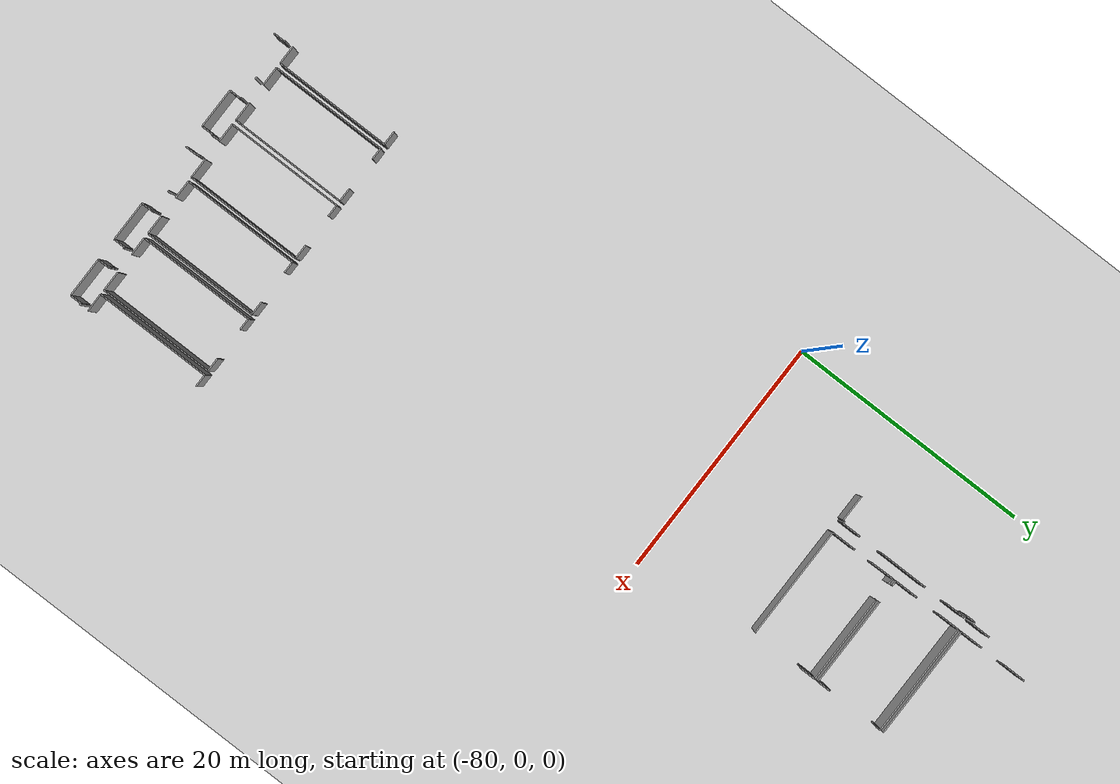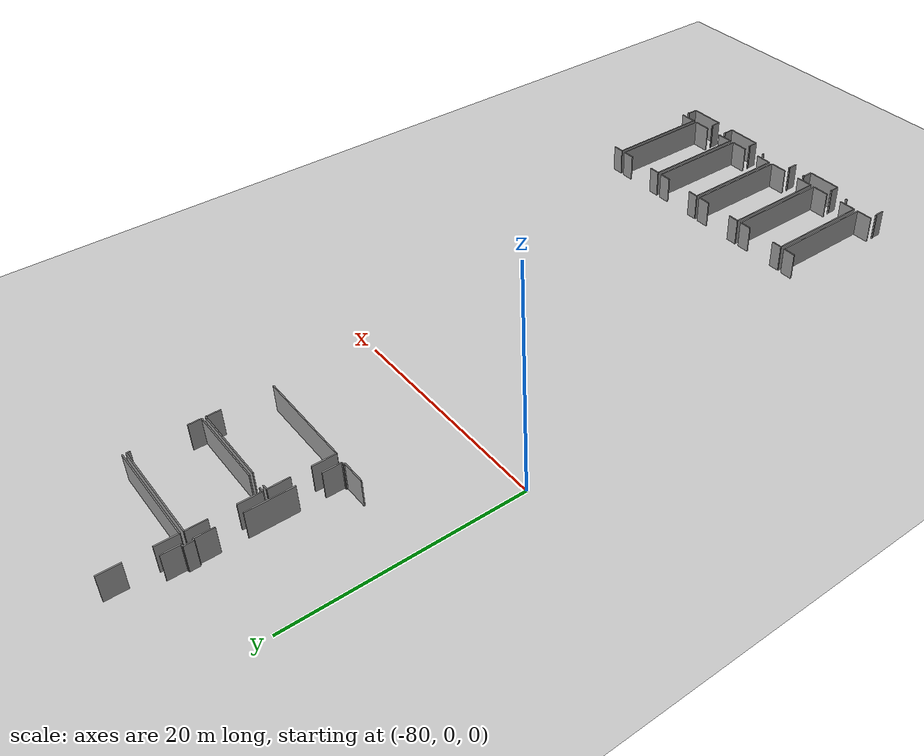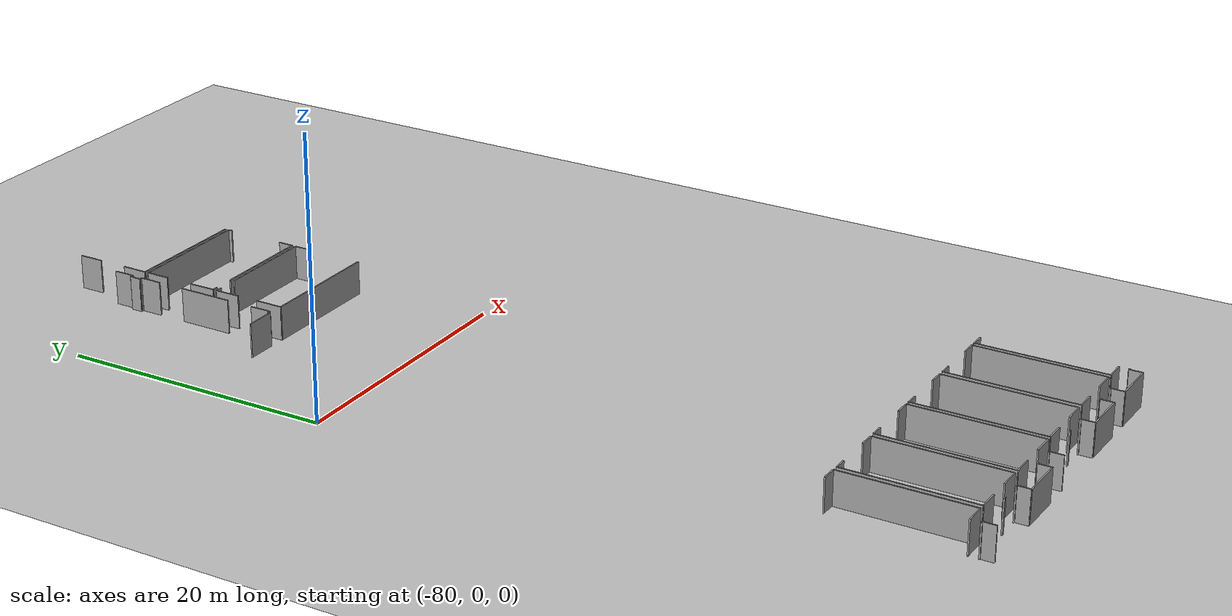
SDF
<sdf version="1.6">
 <world name="default">
  <model name="ground_plane">
   <static>1</static>
   <link name="link">
    <collision name="collision">
     <geometry><plane><normal>0 0 1</normal><size>100 100</size></plane></geometry>
     <surface><friction><ode><mu>100</mu><mu2>50</mu2></ode></friction></surface>
    </collision>
    <visual name="visual">
     <cast_shadows>0</cast_shadows>
     <geometry><plane><normal>0 0 1</normal><size>100 100</size></plane></geometry>
     <material>
      <script><uri>file://media/materials/scripts/gazebo.material</uri><name>Gazebo/Grey</name></script>
     </material>
    </visual>
   </link>
  </model>
  <model name="0510045926_A-40">
   <static>1</static>
   <link name="Wall_873">
    <collision name="Wall_873_Collision">
     <geometry><box><size>0.477208835979 0.1 2.5</size></box></geometry>
     <pose>0.238604417989 0 1.25 0 0 0</pose>
    </collision>
    <visual name="Wall_873_Visual">
     <pose>0.238604417989 0 1.25 0 0 0</pose>
     <geometry><box><size>0.477208835979 0.1 2.5</size></box></geometry>
     <material>
      <script><uri>file://media/materials/scripts/gazebo.material</uri><name>Gazebo/Grey</name></script>
      <ambient>1 1 1 1</ambient>
     </material>
    </visual>
    <pose>63.1870442878 -85.9717609133 0 0 0 0.0</pose>
   </link>
   <link name="Wall_874">
    <collision name="Wall_874_Collision">
     <geometry><box><size>7.28048076252 0.1 2.5</size></box></geometry>
     <pose>3.64024038126 0 1.25 0 0 0</pose>
    </collision>
    <visual name="Wall_874_Visual">
     <pose>3.64024038126 0 1.25 0 0 0</pose>
     <geometry><box><size>7.28048076252 0.1 2.5</size></box></geometry>
     <material>
      <script><uri>file://media/materials/scripts/gazebo.material</uri><name>Gazebo/Grey</name></script>
      <ambient>1 1 1 1</ambient>
     </material>
    </visual>
    <pose>65.1588305845 -85.9717609133 0 0 0 0.0</pose>
   </link>
   <link name="Wall_875">
    <collision name="Wall_875_Collision">
     <geometry><box><size>1.22018238008 0.1 2.5</size></box></geometry>
     <pose>0.61009119004 0 1.25 0 0 0</pose>
    </collision>
    <visual name="Wall_875_Visual">
     <pose>0.61009119004 0 1.25 0 0 0</pose>
     <geometry><box><size>1.22018238008 0.1 2.5</size></box></geometry>
     <material>
      <script><uri>file://media/materials/scripts/gazebo.material</uri><name>Gazebo/Grey</name></script>
      <ambient>1 1 1 1</ambient>
     </material>
    </visual>
    <pose>72.439311347 -85.9717609133 0 0 0 -1.57079632679</pose>
   </link>
   <link name="Wall_876">
    <collision name="Wall_876_Collision">
     <geometry><box><size>9.22612210708 0.1 2.5</size></box></geometry>
     <pose>4.61306105354 0 1.25 0 0 0</pose>
    </collision>
    <visual name="Wall_876_Visual">
     <pose>4.61306105354 0 1.25 0 0 0</pose>
     <geometry><box><size>9.22612210708 0.1 2.5</size></box></geometry>
     <material>
      <script><uri>file://media/materials/scripts/gazebo.material</uri><name>Gazebo/Grey</name></script>
      <ambient>1 1 1 1</ambient>
     </material>
    </visual>
    <pose>72.439311347 -91.4761617687 0 0 0 3.14159265359</pose>
   </link>
   <link name="Wall_877">
    <collision name="Wall_877_Collision">
     <geometry><box><size>2.03778326342 0.1 2.5</size></box></geometry>
     <pose>1.01889163171 0 1.25 0 0 0</pose>
    </collision>
    <visual name="Wall_877_Visual">
     <pose>1.01889163171 0 1.25 0 0 0</pose>
     <geometry><box><size>2.03778326342 0.1 2.5</size></box></geometry>
     <material>
      <script><uri>file://media/materials/scripts/gazebo.material</uri><name>Gazebo/Grey</name></script>
      <ambient>1 1 1 1</ambient>
     </material>
    </visual>
    <pose>63.21318924 -91.4761617687 0 0 0 1.57079632679</pose>
   </link>
   <link name="Wall_878">
    <collision name="Wall_878_Collision">
     <geometry><box><size>1.84683096638 0.1 2.5</size></box></geometry>
     <pose>0.923415483188 0 1.25 0 0 0</pose>
    </collision>
    <visual name="Wall_878_Visual">
     <pose>0.923415483188 0 1.25 0 0 0</pose>
     <geometry><box><size>1.84683096638 0.1 2.5</size></box></geometry>
     <material>
      <script><uri>file://media/materials/scripts/gazebo.material</uri><name>Gazebo/Grey</name></script>
      <ambient>1 1 1 1</ambient>
     </material>
    </visual>
    <pose>63.21318924 -87.8184068078 0 0 0 1.58495345651</pose>
   </link>
   <link name="Wall_879">
    <collision name="Wall_879_Collision">
     <geometry><box><size>9.25962825939 0.1 2.5</size></box></geometry>
     <pose>4.6298141297 0 1.25 0 0 0</pose>
    </collision>
    <visual name="Wall_879_Visual">
     <pose>4.6298141297 0 1.25 0 0 0</pose>
     <geometry><box><size>9.25962825939 0.1 2.5</size></box></geometry>
     <material>
      <script><uri>file://media/materials/scripts/gazebo.material</uri><name>Gazebo/Grey</name></script>
      <ambient>1 1 1 1</ambient>
     </material>
    </visual>
    <pose>63.1847597774 -79.9195852344 0 0 0 0.0</pose>
   </link>
   <link name="Wall_880">
    <collision name="Wall_880_Collision">
     <geometry><box><size>0.305616722616 0.1 2.5</size></box></geometry>
     <pose>0.152808361308 0 1.25 0 0 0</pose>
    </collision>
    <visual name="Wall_880_Visual">
     <pose>0.152808361308 0 1.25 0 0 0</pose>
     <geometry><box><size>0.305616722616 0.1 2.5</size></box></geometry>
     <material>
      <script><uri>file://media/materials/scripts/gazebo.material</uri><name>Gazebo/Grey</name></script>
      <ambient>1 1 1 1</ambient>
     </material>
    </visual>
    <pose>72.4443880368 -79.9195852344 0 0 0 -1.57079632679</pose>
   </link>
   <link name="Wall_881">
    <collision name="Wall_881_Collision">
     <geometry><box><size>1.12372527493 0.1 2.5</size></box></geometry>
     <pose>0.561862637467 0 1.25 0 0 0</pose>
    </collision>
    <visual name="Wall_881_Visual">
     <pose>0.561862637467 0 1.25 0 0 0</pose>
     <geometry><box><size>1.12372527493 0.1 2.5</size></box></geometry>
     <material>
      <script><uri>file://media/materials/scripts/gazebo.material</uri><name>Gazebo/Grey</name></script>
      <ambient>1 1 1 1</ambient>
     </material>
    </visual>
    <pose>72.4443880368 -84.5513031228 0 0 0 -1.57079632679</pose>
   </link>
   <link name="Wall_882">
    <collision name="Wall_882_Collision">
     <geometry><box><size>7.33073999099 0.1 2.5</size></box></geometry>
     <pose>3.66536999549 0 1.25 0 0 0</pose>
    </collision>
    <visual name="Wall_882_Visual">
     <pose>3.66536999549 0 1.25 0 0 0</pose>
     <geometry><box><size>7.33073999099 0.1 2.5</size></box></geometry>
     <material>
      <script><uri>file://media/materials/scripts/gazebo.material</uri><name>Gazebo/Grey</name></script>
      <ambient>1 1 1 1</ambient>
     </material>
    </visual>
    <pose>72.4443880368 -85.6750283977 0 0 0 3.14159265359</pose>
   </link>
   <link name="Wall_883">
    <collision name="Wall_883_Collision">
     <geometry><box><size>0.441164338793 0.1 2.5</size></box></geometry>
     <pose>0.220582169396 0 1.25 0 0 0</pose>
    </collision>
    <visual name="Wall_883_Visual">
     <pose>0.220582169396 0 1.25 0 0 0</pose>
     <geometry><box><size>0.441164338793 0.1 2.5</size></box></geometry>
     <material>
      <script><uri>file://media/materials/scripts/gazebo.material</uri><name>Gazebo/Grey</name></script>
      <ambient>1 1 1 1</ambient>
     </material>
    </visual>
    <pose>63.6264317852 -85.6750283977 0 0 0 3.14159265359</pose>
   </link>
   <link name="Wall_884">
    <collision name="Wall_884_Collision">
     <geometry><box><size>1.95249487572 0.1 2.5</size></box></geometry>
     <pose>0.976247437858 0 1.25 0 0 0</pose>
    </collision>
    <visual name="Wall_884_Visual">
     <pose>0.976247437858 0 1.25 0 0 0</pose>
     <geometry><box><size>1.95249487572 0.1 2.5</size></box></geometry>
     <material>
      <script><uri>file://media/materials/scripts/gazebo.material</uri><name>Gazebo/Grey</name></script>
      <ambient>1 1 1 1</ambient>
     </material>
    </visual>
    <pose>63.1852674464 -85.6750283977 0 0 0 1.57079632679</pose>
   </link>
   <link name="Wall_885">
    <collision name="Wall_885_Collision">
     <geometry><box><size>1.70881384339 0.1 2.5</size></box></geometry>
     <pose>0.854406921697 0 1.25 0 0 0</pose>
    </collision>
    <visual name="Wall_885_Visual">
     <pose>0.854406921697 0 1.25 0 0 0</pose>
     <geometry><box><size>1.70881384339 0.1 2.5</size></box></geometry>
     <material>
      <script><uri>file://media/materials/scripts/gazebo.material</uri><name>Gazebo/Grey</name></script>
      <ambient>1 1 1 1</ambient>
     </material>
    </visual>
    <pose>63.1852674464 -81.6283990024 0 0 0 1.57109341532</pose>
   </link>
   <link name="Wall_886">
    <collision name="Wall_886_Collision">
     <geometry><box><size>1.87101400532 0.1 2.5</size></box></geometry>
     <pose>0.935507002659 0 1.25 0 0 0</pose>
    </collision>
    <visual name="Wall_886_Visual">
     <pose>0.935507002659 0 1.25 0 0 0</pose>
     <geometry><box><size>1.87101400532 0.1 2.5</size></box></geometry>
     <material>
      <script><uri>file://media/materials/scripts/gazebo.material</uri><name>Gazebo/Grey</name></script>
      <ambient>1 1 1 1</ambient>
     </material>
    </visual>
    <pose>63.1832367705 -79.6241218913 0 0 0 1.57079632679</pose>
   </link>
   <link name="Wall_887">
    <collision name="Wall_887_Collision">
     <geometry><box><size>1.81034756287 0.1 2.5</size></box></geometry>
     <pose>0.905173781436 0 1.25 0 0 0</pose>
    </collision>
    <visual name="Wall_887_Visual">
     <pose>0.905173781436 0 1.25 0 0 0</pose>
     <geometry><box><size>1.81034756287 0.1 2.5</size></box></geometry>
     <material>
      <script><uri>file://media/materials/scripts/gazebo.material</uri><name>Gazebo/Grey</name></script>
      <ambient>1 1 1 1</ambient>
     </material>
    </visual>
    <pose>63.1832367705 -75.6470431455 0 0 0 1.57079632679</pose>
   </link>
   <link name="Wall_890">
    <collision name="Wall_890_Collision">
     <geometry><box><size>9.28679232728 0.1 2.5</size></box></geometry>
     <pose>4.64339616364 0 1.25 0 0 0</pose>
    </collision>
    <visual name="Wall_890_Visual">
     <pose>4.64339616364 0 1.25 0 0 0</pose>
     <geometry><box><size>9.28679232728 0.1 2.5</size></box></geometry>
     <material>
      <script><uri>file://media/materials/scripts/gazebo.material</uri><name>Gazebo/Grey</name></script>
      <ambient>1 1 1 1</ambient>
     </material>
    </visual>
    <pose>72.47002532 -79.6324984294 0 0 0 3.14069066947</pose>
   </link>
   <link name="Wall_924">
    <collision name="Wall_924_Collision">
     <geometry><box><size>1.51209204039 0.1 2.5</size></box></geometry>
     <pose>0.756046020193 0 1.25 0 0 0</pose>
    </collision>
    <visual name="Wall_924_Visual">
     <pose>0.756046020193 0 1.25 0 0 0</pose>
     <geometry><box><size>1.51209204039 0.1 2.5</size></box></geometry>
     <material>
      <script><uri>file://media/materials/scripts/gazebo.material</uri><name>Gazebo/Grey</name></script>
      <ambient>1 1 1 1</ambient>
     </material>
    </visual>
    <pose>62.2387186435 -77.7853448659 0 0 0 -1.57079632679</pose>
   </link>
   <link name="Wall_925">
    <collision name="Wall_925_Collision">
     <geometry><box><size>0.220582169396 0.1 2.5</size></box></geometry>
     <pose>0.110291084698 0 1.25 0 0 0</pose>
    </collision>
    <visual name="Wall_925_Visual">
     <pose>0.110291084698 0 1.25 0 0 0</pose>
     <geometry><box><size>0.220582169396 0.1 2.5</size></box></geometry>
     <material>
      <script><uri>file://media/materials/scripts/gazebo.material</uri><name>Gazebo/Grey</name></script>
      <ambient>1 1 1 1</ambient>
     </material>
    </visual>
    <pose>62.2387186435 -79.2974369063 0 0 0 3.14159265359</pose>
   </link>
   <link name="Wall_926">
    <collision name="Wall_926_Collision">
     <geometry><box><size>0.801609310649 0.1 2.5</size></box></geometry>
     <pose>0.400804655324 0 1.25 0 0 0</pose>
    </collision>
    <visual name="Wall_926_Visual">
     <pose>0.400804655324 0 1.25 0 0 0</pose>
     <geometry><box><size>0.801609310649 0.1 2.5</size></box></geometry>
     <material>
      <script><uri>file://media/materials/scripts/gazebo.material</uri><name>Gazebo/Grey</name></script>
      <ambient>1 1 1 1</ambient>
     </material>
    </visual>
    <pose>62.0181364741 -79.2974369063 0 0 0 -1.57079632679</pose>
   </link>
   <link name="Wall_927">
    <collision name="Wall_927_Collision">
     <geometry><box><size>0.207636610548 0.1 2.5</size></box></geometry>
     <pose>0.103818305274 0 1.25 0 0 0</pose>
    </collision>
    <visual name="Wall_927_Visual">
     <pose>0.103818305274 0 1.25 0 0 0</pose>
     <geometry><box><size>0.207636610548 0.1 2.5</size></box></geometry>
     <material>
      <script><uri>file://media/materials/scripts/gazebo.material</uri><name>Gazebo/Grey</name></script>
      <ambient>1 1 1 1</ambient>
     </material>
    </visual>
    <pose>62.0181364741 -80.0990462169 0 0 0 0.0</pose>
   </link>
   <link name="Wall_928">
    <collision name="Wall_928_Collision">
     <geometry><box><size>1.61007215245 0.1 2.5</size></box></geometry>
     <pose>0.805036076227 0 1.25 0 0 0</pose>
    </collision>
    <visual name="Wall_928_Visual">
     <pose>0.805036076227 0 1.25 0 0 0</pose>
     <geometry><box><size>1.61007215245 0.1 2.5</size></box></geometry>
     <material>
      <script><uri>file://media/materials/scripts/gazebo.material</uri><name>Gazebo/Grey</name></script>
      <ambient>1 1 1 1</ambient>
     </material>
    </visual>
    <pose>62.2257730847 -80.0990462169 0 0 0 -1.57079632679</pose>
   </link>
   <link name="Wall_929">
    <collision name="Wall_929_Collision">
     <geometry><box><size>3.96768686978 0.1 2.5</size></box></geometry>
     <pose>1.98384343489 0 1.25 0 0 0</pose>
    </collision>
    <visual name="Wall_929_Visual">
     <pose>1.98384343489 0 1.25 0 0 0</pose>
     <geometry><box><size>3.96768686978 0.1 2.5</size></box></geometry>
     <material>
      <script><uri>file://media/materials/scripts/gazebo.material</uri><name>Gazebo/Grey</name></script>
      <ambient>1 1 1 1</ambient>
     </material>
    </visual>
    <pose>62.2257730847 -83.7212643496 0 0 0 -1.57079632679</pose>
   </link>
   <link name="Wall_930">
    <collision name="Wall_930_Collision">
     <geometry><box><size>1.58875005553 0.1 2.5</size></box></geometry>
     <pose>0.794375027763 0 1.25 0 0 0</pose>
    </collision>
    <visual name="Wall_930_Visual">
     <pose>0.794375027763 0 1.25 0 0 0</pose>
     <geometry><box><size>1.58875005553 0.1 2.5</size></box></geometry>
     <material>
      <script><uri>file://media/materials/scripts/gazebo.material</uri><name>Gazebo/Grey</name></script>
      <ambient>1 1 1 1</ambient>
     </material>
    </visual>
    <pose>62.2257730847 -89.7064277238 0 0 0 -1.57079632679</pose>
   </link>
   <link name="Wall_931">
    <collision name="Wall_931_Collision">
     <geometry><box><size>0.189360527468 0.1 2.5</size></box></geometry>
     <pose>0.094680263734 0 1.25 0 0 0</pose>
    </collision>
    <visual name="Wall_931_Visual">
     <pose>0.094680263734 0 1.25 0 0 0</pose>
     <geometry><box><size>0.189360527468 0.1 2.5</size></box></geometry>
     <material>
      <script><uri>file://media/materials/scripts/gazebo.material</uri><name>Gazebo/Grey</name></script>
      <ambient>1 1 1 1</ambient>
     </material>
    </visual>
    <pose>62.2257730847 -91.2951777793 0 0 0 3.14159265359</pose>
   </link>
   <link name="Wall_932">
    <collision name="Wall_932_Collision">
     <geometry><box><size>0.136309119639 0.1 2.5</size></box></geometry>
     <pose>0.0681545598193 0 1.25 0 0 0</pose>
    </collision>
    <visual name="Wall_932_Visual">
     <pose>0.0681545598193 0 1.25 0 0 0</pose>
     <geometry><box><size>0.136309119639 0.1 2.5</size></box></geometry>
     <material>
      <script><uri>file://media/materials/scripts/gazebo.material</uri><name>Gazebo/Grey</name></script>
      <ambient>1 1 1 1</ambient>
     </material>
    </visual>
    <pose>62.0364125572 -91.2951777793 0 0 0 -1.57079632679</pose>
   </link>
   <link name="Wall_933">
    <collision name="Wall_933_Collision">
     <geometry><box><size>2.18957628678 0.1 2.5</size></box></geometry>
     <pose>1.09478814339 0 1.25 0 0 0</pose>
    </collision>
    <visual name="Wall_933_Visual">
     <pose>1.09478814339 0 1.25 0 0 0</pose>
     <geometry><box><size>2.18957628678 0.1 2.5</size></box></geometry>
     <material>
      <script><uri>file://media/materials/scripts/gazebo.material</uri><name>Gazebo/Grey</name></script>
      <ambient>1 1 1 1</ambient>
     </material>
    </visual>
    <pose>62.0364125572 -91.431486899 0 0 0 3.14159265359</pose>
   </link>
   <link name="Wall_1290">
    <collision name="Wall_1290_Collision">
     <geometry><box><size>1.16789247571 0.1 2.5</size></box></geometry>
     <pose>0.583946237856 0 1.25 0 0 0</pose>
    </collision>
    <visual name="Wall_1290_Visual">
     <pose>0.583946237856 0 1.25 0 0 0</pose>
     <geometry><box><size>1.16789247571 0.1 2.5</size></box></geometry>
     <material>
      <script><uri>file://media/materials/scripts/gazebo.material</uri><name>Gazebo/Grey</name></script>
      <ambient>1 1 1 1</ambient>
     </material>
    </visual>
    <pose>59.7671322414 -134.656707894 0 0 0 0.0</pose>
   </link>
   <link name="Wall_1291">
    <collision name="Wall_1291_Collision">
     <geometry><box><size>9.6269267624 0.1 2.5</size></box></geometry>
     <pose>4.8134633812 0 1.25 0 0 0</pose>
    </collision>
    <visual name="Wall_1291_Visual">
     <pose>4.8134633812 0 1.25 0 0 0</pose>
     <geometry><box><size>9.6269267624 0.1 2.5</size></box></geometry>
     <material>
      <script><uri>file://media/materials/scripts/gazebo.material</uri><name>Gazebo/Grey</name></script>
      <ambient>1 1 1 1</ambient>
     </material>
    </visual>
    <pose>60.9350247171 -134.656707894 0 0 0 -1.57079632679</pose>
   </link>
   <link name="Wall_1292">
    <collision name="Wall_1292_Collision">
     <geometry><box><size>1.55194405488 0.1 2.5</size></box></geometry>
     <pose>0.77597202744 0 1.25 0 0 0</pose>
    </collision>
    <visual name="Wall_1292_Visual">
     <pose>0.77597202744 0 1.25 0 0 0</pose>
     <geometry><box><size>1.55194405488 0.1 2.5</size></box></geometry>
     <material>
      <script><uri>file://media/materials/scripts/gazebo.material</uri><name>Gazebo/Grey</name></script>
      <ambient>1 1 1 1</ambient>
     </material>
    </visual>
    <pose>60.9350247171 -144.283634656 0 0 0 3.14159265359</pose>
   </link>
   <link name="Wall_1354">
    <collision name="Wall_1354_Collision">
     <geometry><box><size>9.60687383791 0.1 2.5</size></box></geometry>
     <pose>4.80343691896 0 1.25 0 0 0</pose>
    </collision>
    <visual name="Wall_1354_Visual">
     <pose>4.80343691896 0 1.25 0 0 0</pose>
     <geometry><box><size>9.60687383791 0.1 2.5</size></box></geometry>
     <material>
      <script><uri>file://media/materials/scripts/gazebo.material</uri><name>Gazebo/Grey</name></script>
      <ambient>1 1 1 1</ambient>
     </material>
    </visual>
    <pose>61.3396368898 -144.290234353 0 0 0 1.57079632679</pose>
   </link>
   <link name="Wall_1355">
    <collision name="Wall_1355_Collision">
     <geometry><box><size>0.977262775807 0.1 2.5</size></box></geometry>
     <pose>0.488631387904 0 1.25 0 0 0</pose>
    </collision>
    <visual name="Wall_1355_Visual">
     <pose>0.488631387904 0 1.25 0 0 0</pose>
     <geometry><box><size>0.977262775807 0.1 2.5</size></box></geometry>
     <material>
      <script><uri>file://media/materials/scripts/gazebo.material</uri><name>Gazebo/Grey</name></script>
      <ambient>1 1 1 1</ambient>
     </material>
    </visual>
    <pose>61.3396368898 -134.683360515 0 0 0 0.0</pose>
   </link>
   <link name="Wall_1356">
    <collision name="Wall_1356_Collision">
     <geometry><box><size>1.14301669596 0.1 2.5</size></box></geometry>
     <pose>0.571508347982 0 1.25 0 0 0</pose>
    </collision>
    <visual name="Wall_1356_Visual">
     <pose>0.571508347982 0 1.25 0 0 0</pose>
     <geometry><box><size>1.14301669596 0.1 2.5</size></box></geometry>
     <material>
      <script><uri>file://media/materials/scripts/gazebo.material</uri><name>Gazebo/Grey</name></script>
      <ambient>1 1 1 1</ambient>
     </material>
    </visual>
    <pose>65.0438435618 -134.683360515 0 0 0 0.0</pose>
   </link>
   <link name="Wall_1357">
    <collision name="Wall_1357_Collision">
     <geometry><box><size>9.60179714817 0.1 2.5</size></box></geometry>
     <pose>4.80089857408 0 1.25 0 0 0</pose>
    </collision>
    <visual name="Wall_1357_Visual">
     <pose>4.80089857408 0 1.25 0 0 0</pose>
     <geometry><box><size>9.60179714817 0.1 2.5</size></box></geometry>
     <material>
      <script><uri>file://media/materials/scripts/gazebo.material</uri><name>Gazebo/Grey</name></script>
      <ambient>1 1 1 1</ambient>
     </material>
    </visual>
    <pose>66.1868602578 -134.683360515 0 0 0 -1.57079632679</pose>
   </link>
   <link name="Wall_1358">
    <collision name="Wall_1358_Collision">
     <geometry><box><size>1.62225620784 0.1 2.5</size></box></geometry>
     <pose>0.81112810392 0 1.25 0 0 0</pose>
    </collision>
    <visual name="Wall_1358_Visual">
     <pose>0.81112810392 0 1.25 0 0 0</pose>
     <geometry><box><size>1.62225620784 0.1 2.5</size></box></geometry>
     <material>
      <script><uri>file://media/materials/scripts/gazebo.material</uri><name>Gazebo/Grey</name></script>
      <ambient>1 1 1 1</ambient>
     </material>
    </visual>
    <pose>66.1868602578 -144.285157663 0 0 0 3.14159265359</pose>
   </link>
   <link name="Wall_1359">
    <collision name="Wall_1359_Collision">
     <geometry><box><size>1.58748900058 0.1 2.5</size></box></geometry>
     <pose>0.793744500289 0 1.25 0 0 0</pose>
    </collision>
    <visual name="Wall_1359_Visual">
     <pose>0.793744500289 0 1.25 0 0 0</pose>
     <geometry><box><size>1.58748900058 0.1 2.5</size></box></geometry>
     <material>
      <script><uri>file://media/materials/scripts/gazebo.material</uri><name>Gazebo/Grey</name></script>
      <ambient>1 1 1 1</ambient>
     </material>
    </visual>
    <pose>62.9271177729 -144.285157663 0 0 0 -3.13839471118</pose>
   </link>
   <link name="Wall_1360">
    <collision name="Wall_1360_Collision">
     <geometry><box><size>9.62794210035 0.1 2.5</size></box></geometry>
     <pose>4.81397105018 0 1.25 0 0 0</pose>
    </collision>
    <visual name="Wall_1360_Visual">
     <pose>4.81397105018 0 1.25 0 0 0</pose>
     <geometry><box><size>9.62794210035 0.1 2.5</size></box></geometry>
     <material>
      <script><uri>file://media/materials/scripts/gazebo.material</uri><name>Gazebo/Grey</name></script>
      <ambient>1 1 1 1</ambient>
     </material>
    </visual>
    <pose>66.5726886783 -144.299626229 0 0 0 1.57079632679</pose>
   </link>
   <link name="Wall_1361">
    <collision name="Wall_1361_Collision">
     <geometry><box><size>1.00264622453 0.1 2.5</size></box></geometry>
     <pose>0.501323112265 0 1.25 0 0 0</pose>
    </collision>
    <visual name="Wall_1361_Visual">
     <pose>0.501323112265 0 1.25 0 0 0</pose>
     <geometry><box><size>1.00264622453 0.1 2.5</size></box></geometry>
     <material>
      <script><uri>file://media/materials/scripts/gazebo.material</uri><name>Gazebo/Grey</name></script>
      <ambient>1 1 1 1</ambient>
     </material>
    </visual>
    <pose>66.5726886783 -134.671684128 0 0 0 0.0</pose>
   </link>
   <link name="Wall_1362">
    <collision name="Wall_1362_Collision">
     <geometry><box><size>1.20317546944 0.1 2.5</size></box></geometry>
     <pose>0.601587734718 0 1.25 0 0 0</pose>
    </collision>
    <visual name="Wall_1362_Visual">
     <pose>0.601587734718 0 1.25 0 0 0</pose>
     <geometry><box><size>1.20317546944 0.1 2.5</size></box></geometry>
     <material>
      <script><uri>file://media/materials/scripts/gazebo.material</uri><name>Gazebo/Grey</name></script>
      <ambient>1 1 1 1</ambient>
     </material>
    </visual>
    <pose>70.2555732535 -134.671684128 0 0 0 0.0</pose>
   </link>
   <link name="Wall_1363">
    <collision name="Wall_1363_Collision">
     <geometry><box><size>9.62819593484 0.1 2.5</size></box></geometry>
     <pose>4.81409796742 0 1.25 0 0 0</pose>
    </collision>
    <visual name="Wall_1363_Visual">
     <pose>4.81409796742 0 1.25 0 0 0</pose>
     <geometry><box><size>9.62819593484 0.1 2.5</size></box></geometry>
     <material>
      <script><uri>file://media/materials/scripts/gazebo.material</uri><name>Gazebo/Grey</name></script>
      <ambient>1 1 1 1</ambient>
     </material>
    </visual>
    <pose>71.4587487229 -134.671684128 0 0 0 -1.57079632679</pose>
   </link>
   <link name="Wall_1364">
    <collision name="Wall_1364_Collision">
     <geometry><box><size>1.67099242939 0.1 2.5</size></box></geometry>
     <pose>0.835496214693 0 1.25 0 0 0</pose>
    </collision>
    <visual name="Wall_1364_Visual">
     <pose>0.835496214693 0 1.25 0 0 0</pose>
     <geometry><box><size>1.67099242939 0.1 2.5</size></box></geometry>
     <material>
      <script><uri>file://media/materials/scripts/gazebo.material</uri><name>Gazebo/Grey</name></script>
      <ambient>1 1 1 1</ambient>
     </material>
    </visual>
    <pose>71.4587487229 -144.299880063 0 0 0 3.14159265359</pose>
   </link>
   <link name="Wall_1365">
    <collision name="Wall_1365_Collision">
     <geometry><box><size>1.58189654474 0.1 2.5</size></box></geometry>
     <pose>0.790948272368 0 1.25 0 0 0</pose>
    </collision>
    <visual name="Wall_1365_Visual">
     <pose>0.790948272368 0 1.25 0 0 0</pose>
     <geometry><box><size>1.58189654474 0.1 2.5</size></box></geometry>
     <material>
      <script><uri>file://media/materials/scripts/gazebo.material</uri><name>Gazebo/Grey</name></script>
      <ambient>1 1 1 1</ambient>
     </material>
    </visual>
    <pose>68.1545852027 -144.299880063 0 0 0 3.14143219146</pose>
   </link>
   <link name="Wall_1366">
    <collision name="Wall_1366_Collision">
     <geometry><box><size>9.5992588033 0.1 2.5</size></box></geometry>
     <pose>4.79962940165 0 1.25 0 0 0</pose>
    </collision>
    <visual name="Wall_1366_Visual">
     <pose>4.79962940165 0 1.25 0 0 0</pose>
     <geometry><box><size>9.5992588033 0.1 2.5</size></box></geometry>
     <material>
      <script><uri>file://media/materials/scripts/gazebo.material</uri><name>Gazebo/Grey</name></script>
      <ambient>1 1 1 1</ambient>
     </material>
    </visual>
    <pose>71.8164015154 -144.277796463 0 0 0 1.57079632679</pose>
   </link>
   <link name="Wall_1367">
    <collision name="Wall_1367_Collision">
     <geometry><box><size>0.960002030676 0.1 2.5</size></box></geometry>
     <pose>0.480001015338 0 1.25 0 0 0</pose>
    </collision>
    <visual name="Wall_1367_Visual">
     <pose>0.480001015338 0 1.25 0 0 0</pose>
     <geometry><box><size>0.960002030676 0.1 2.5</size></box></geometry>
     <material>
      <script><uri>file://media/materials/scripts/gazebo.material</uri><name>Gazebo/Grey</name></script>
      <ambient>1 1 1 1</ambient>
     </material>
    </visual>
    <pose>71.8164015154 -134.67853766 0 0 0 0.0</pose>
   </link>
   <link name="Wall_1368">
    <collision name="Wall_1368_Collision">
     <geometry><box><size>1.12550211635 0.1 2.5</size></box></geometry>
     <pose>0.562751058173 0 1.25 0 0 0</pose>
    </collision>
    <visual name="Wall_1368_Visual">
     <pose>0.562751058173 0 1.25 0 0 0</pose>
     <geometry><box><size>1.12550211635 0.1 2.5</size></box></geometry>
     <material>
      <script><uri>file://media/materials/scripts/gazebo.material</uri><name>Gazebo/Grey</name></script>
      <ambient>1 1 1 1</ambient>
     </material>
    </visual>
    <pose>75.5112163114 -134.67853766 0 0 0 0.0</pose>
   </link>
   <link name="Wall_1369">
    <collision name="Wall_1369_Collision">
     <geometry><box><size>9.60687383791 0.1 2.5</size></box></geometry>
     <pose>4.80343691896 0 1.25 0 0 0</pose>
    </collision>
    <visual name="Wall_1369_Visual">
     <pose>4.80343691896 0 1.25 0 0 0</pose>
     <geometry><box><size>9.60687383791 0.1 2.5</size></box></geometry>
     <material>
      <script><uri>file://media/materials/scripts/gazebo.material</uri><name>Gazebo/Grey</name></script>
      <ambient>1 1 1 1</ambient>
     </material>
    </visual>
    <pose>76.6367184277 -134.67853766 0 0 0 -1.57079632679</pose>
   </link>
   <link name="Wall_1370">
    <collision name="Wall_1370_Collision">
     <geometry><box><size>1.62860207002 0.1 2.5</size></box></geometry>
     <pose>0.81430103501 0 1.25 0 0 0</pose>
    </collision>
    <visual name="Wall_1370_Visual">
     <pose>0.81430103501 0 1.25 0 0 0</pose>
     <geometry><box><size>1.62860207002 0.1 2.5</size></box></geometry>
     <material>
      <script><uri>file://media/materials/scripts/gazebo.material</uri><name>Gazebo/Grey</name></script>
      <ambient>1 1 1 1</ambient>
     </material>
    </visual>
    <pose>76.6367184277 -144.285411497 0 0 0 3.14159265359</pose>
   </link>
   <link name="Wall_1371">
    <collision name="Wall_1371_Collision">
     <geometry><box><size>1.51566485313 0.1 2.5</size></box></geometry>
     <pose>0.757832426567 0 1.25 0 0 0</pose>
    </collision>
    <visual name="Wall_1371_Visual">
     <pose>0.757832426567 0 1.25 0 0 0</pose>
     <geometry><box><size>1.51566485313 0.1 2.5</size></box></geometry>
     <material>
      <script><uri>file://media/materials/scripts/gazebo.material</uri><name>Gazebo/Grey</name></script>
      <ambient>1 1 1 1</ambient>
     </material>
    </visual>
    <pose>73.3320472386 -144.285411497 0 0 0 3.13656841183</pose>
   </link>
   <link name="Wall_1372">
    <collision name="Wall_1372_Collision">
     <geometry><box><size>9.61042752074 0.1 2.5</size></box></geometry>
     <pose>4.80521376037 0 1.25 0 0 0</pose>
    </collision>
    <visual name="Wall_1372_Visual">
     <pose>4.80521376037 0 1.25 0 0 0</pose>
     <geometry><box><size>9.61042752074 0.1 2.5</size></box></geometry>
     <material>
      <script><uri>file://media/materials/scripts/gazebo.material</uri><name>Gazebo/Grey</name></script>
      <ambient>1 1 1 1</ambient>
     </material>
    </visual>
    <pose>77.0552914972 -144.296834049 0 0 0 1.57079632679</pose>
   </link>
   <link name="Wall_1373">
    <collision name="Wall_1373_Collision">
     <geometry><box><size>0.992746679528 0.1 2.5</size></box></geometry>
     <pose>0.496373339764 0 1.25 0 0 0</pose>
    </collision>
    <visual name="Wall_1373_Visual">
     <pose>0.496373339764 0 1.25 0 0 0</pose>
     <geometry><box><size>0.992746679528 0.1 2.5</size></box></geometry>
     <material>
      <script><uri>file://media/materials/scripts/gazebo.material</uri><name>Gazebo/Grey</name></script>
      <ambient>1 1 1 1</ambient>
     </material>
    </visual>
    <pose>77.0552914972 -134.686406529 0 0 0 0.0</pose>
   </link>
   <link name="Wall_1374">
    <collision name="Wall_1374_Collision">
     <geometry><box><size>1.12727895776 0.1 2.5</size></box></geometry>
     <pose>0.563639478878 0 1.25 0 0 0</pose>
    </collision>
    <visual name="Wall_1374_Visual">
     <pose>0.563639478878 0 1.25 0 0 0</pose>
     <geometry><box><size>1.12727895776 0.1 2.5</size></box></geometry>
     <material>
      <script><uri>file://media/materials/scripts/gazebo.material</uri><name>Gazebo/Grey</name></script>
      <ambient>1 1 1 1</ambient>
     </material>
    </visual>
    <pose>80.7323378791 -134.686406529 0 0 0 0.0</pose>
   </link>
   <link name="Wall_1375">
    <collision name="Wall_1375_Collision">
     <geometry><box><size>9.59291294112 0.1 2.5</size></box></geometry>
     <pose>4.79645647056 0 1.25 0 0 0</pose>
    </collision>
    <visual name="Wall_1375_Visual">
     <pose>4.79645647056 0 1.25 0 0 0</pose>
     <geometry><box><size>9.59291294112 0.1 2.5</size></box></geometry>
     <material>
      <script><uri>file://media/materials/scripts/gazebo.material</uri><name>Gazebo/Grey</name></script>
      <ambient>1 1 1 1</ambient>
     </material>
    </visual>
    <pose>81.8596168368 -134.686406529 0 0 0 -1.57079632679</pose>
   </link>
   <link name="Wall_1376">
    <collision name="Wall_1376_Collision">
     <geometry><box><size>1.65017800143 0.1 2.5</size></box></geometry>
     <pose>0.825089000717 0 1.25 0 0 0</pose>
    </collision>
    <visual name="Wall_1376_Visual">
     <pose>0.825089000717 0 1.25 0 0 0</pose>
     <geometry><box><size>1.65017800143 0.1 2.5</size></box></geometry>
     <material>
      <script><uri>file://media/materials/scripts/gazebo.material</uri><name>Gazebo/Grey</name></script>
      <ambient>1 1 1 1</ambient>
     </material>
    </visual>
    <pose>81.8596168368 -144.27931947 0 0 0 3.14159265359</pose>
   </link>
   <link name="Wall_1377">
    <collision name="Wall_1377_Collision">
     <geometry><box><size>1.51726982313 0.1 2.5</size></box></geometry>
     <pose>0.758634911565 0 1.25 0 0 0</pose>
    </collision>
    <visual name="Wall_1377_Visual">
     <pose>0.758634911565 0 1.25 0 0 0</pose>
     <geometry><box><size>1.51726982313 0.1 2.5</size></box></geometry>
     <material>
      <script><uri>file://media/materials/scripts/gazebo.material</uri><name>Gazebo/Grey</name></script>
      <ambient>1 1 1 1</ambient>
     </material>
    </visual>
    <pose>78.5724602273 -144.27931947 0 0 0 -3.13004891341</pose>
   </link>
   <link name="Wall_1378">
    <collision name="Wall_1378_Collision">
     <geometry><box><size>9.61575804497 0.1 2.5</size></box></geometry>
     <pose>4.80787902248 0 1.25 0 0 0</pose>
    </collision>
    <visual name="Wall_1378_Visual">
     <pose>4.80787902248 0 1.25 0 0 0</pose>
     <geometry><box><size>9.61575804497 0.1 2.5</size></box></geometry>
     <material>
      <script><uri>file://media/materials/scripts/gazebo.material</uri><name>Gazebo/Grey</name></script>
      <ambient>1 1 1 1</ambient>
     </material>
    </visual>
    <pose>82.2360533814 -144.296834049 0 0 0 1.57079632679</pose>
   </link>
   <link name="Wall_1379">
    <collision name="Wall_1379_Collision">
     <geometry><box><size>1.02244531453 0.1 2.5</size></box></geometry>
     <pose>0.511222657266 0 1.25 0 0 0</pose>
    </collision>
    <visual name="Wall_1379_Visual">
     <pose>0.511222657266 0 1.25 0 0 0</pose>
     <geometry><box><size>1.02244531453 0.1 2.5</size></box></geometry>
     <material>
      <script><uri>file://media/materials/scripts/gazebo.material</uri><name>Gazebo/Grey</name></script>
      <ambient>1 1 1 1</ambient>
     </material>
    </visual>
    <pose>82.2360533814 -134.681076004 0 0 0 0.0</pose>
   </link>
   <link name="Wall_1383">
    <collision name="Wall_1383_Collision">
     <geometry><box><size>1.53794302331 0.1 2.5</size></box></geometry>
     <pose>0.768971511653 0 1.25 0 0 0</pose>
    </collision>
    <visual name="Wall_1383_Visual">
     <pose>0.768971511653 0 1.25 0 0 0</pose>
     <geometry><box><size>1.53794302331 0.1 2.5</size></box></geometry>
     <material>
      <script><uri>file://media/materials/scripts/gazebo.material</uri><name>Gazebo/Grey</name></script>
      <ambient>1 1 1 1</ambient>
     </material>
    </visual>
    <pose>83.773782705 -144.271196766 0 0 0 -3.12492202904</pose>
   </link>
   <link name="Wall_1417">
    <collision name="Wall_1417_Collision">
     <geometry><box><size>0.118033036559 0.1 2.5</size></box></geometry>
     <pose>0.0590165182793 0 1.25 0 0 0</pose>
    </collision>
    <visual name="Wall_1417_Visual">
     <pose>0.0590165182793 0 1.25 0 0 0</pose>
     <geometry><box><size>0.118033036559 0.1 2.5</size></box></geometry>
     <material>
      <script><uri>file://media/materials/scripts/gazebo.material</uri><name>Gazebo/Grey</name></script>
      <ambient>1 1 1 1</ambient>
     </material>
    </visual>
    <pose>59.3658199171 -145.029654214 0 0 0 0.0</pose>
   </link>
   <link name="Wall_1418">
    <collision name="Wall_1418_Collision">
     <geometry><box><size>0.953402334008 0.1 2.5</size></box></geometry>
     <pose>0.476701167004 0 1.25 0 0 0</pose>
    </collision>
    <visual name="Wall_1418_Visual">
     <pose>0.476701167004 0 1.25 0 0 0</pose>
     <geometry><box><size>0.953402334008 0.1 2.5</size></box></geometry>
     <material>
      <script><uri>file://media/materials/scripts/gazebo.material</uri><name>Gazebo/Grey</name></script>
      <ambient>1 1 1 1</ambient>
     </material>
    </visual>
    <pose>59.4838529537 -145.029654214 0 0 0 -1.57079632679</pose>
   </link>
   <link name="Wall_1421">
    <collision name="Wall_1421_Collision">
     <geometry><box><size>0.191391203366 0.1 2.5</size></box></geometry>
     <pose>0.0956956016829 0 1.25 0 0 0</pose>
    </collision>
    <visual name="Wall_1421_Visual">
     <pose>0.0956956016829 0 1.25 0 0 0</pose>
     <geometry><box><size>0.191391203366 0.1 2.5</size></box></geometry>
     <material>
      <script><uri>file://media/materials/scripts/gazebo.material</uri><name>Gazebo/Grey</name></script>
      <ambient>1 1 1 1</ambient>
     </material>
    </visual>
    <pose>62.7707557287 -145.006555276 0 0 0 0.0</pose>
   </link>
   <link name="Wall_1422">
    <collision name="Wall_1422_Collision">
     <geometry><box><size>0.12336356079 0.1 2.5</size></box></geometry>
     <pose>0.0616817803951 0 1.25 0 0 0</pose>
    </collision>
    <visual name="Wall_1422_Visual">
     <pose>0.0616817803951 0 1.25 0 0 0</pose>
     <geometry><box><size>0.12336356079 0.1 2.5</size></box></geometry>
     <material>
      <script><uri>file://media/materials/scripts/gazebo.material</uri><name>Gazebo/Grey</name></script>
      <ambient>1 1 1 1</ambient>
     </material>
    </visual>
    <pose>64.6085174162 -145.006555276 0 0 0 0.0</pose>
   </link>
   <link name="Wall_1423">
    <collision name="Wall_1423_Collision">
     <geometry><box><size>0.949087147725 0.1 2.5</size></box></geometry>
     <pose>0.474543573863 0 1.25 0 0 0</pose>
    </collision>
    <visual name="Wall_1423_Visual">
     <pose>0.474543573863 0 1.25 0 0 0</pose>
     <geometry><box><size>0.949087147725 0.1 2.5</size></box></geometry>
     <material>
      <script><uri>file://media/materials/scripts/gazebo.material</uri><name>Gazebo/Grey</name></script>
      <ambient>1 1 1 1</ambient>
     </material>
    </visual>
    <pose>64.731880977 -145.006555276 0 0 0 -1.57079632679</pose>
   </link>
   <link name="Wall_1424">
    <collision name="Wall_1424_Collision">
     <geometry><box><size>3.29908683043 0.1 2.5</size></box></geometry>
     <pose>1.64954341522 0 1.25 0 0 0</pose>
    </collision>
    <visual name="Wall_1424_Visual">
     <pose>1.64954341522 0 1.25 0 0 0</pose>
     <geometry><box><size>3.29908683043 0.1 2.5</size></box></geometry>
     <material>
      <script><uri>file://media/materials/scripts/gazebo.material</uri><name>Gazebo/Grey</name></script>
      <ambient>1 1 1 1</ambient>
     </material>
    </visual>
    <pose>64.731880977 -145.955642423 0 0 0 0.0</pose>
   </link>
   <link name="Wall_1425">
    <collision name="Wall_1425_Collision">
     <geometry><box><size>0.966601727344 0.1 2.5</size></box></geometry>
     <pose>0.483300863672 0 1.25 0 0 0</pose>
    </collision>
    <visual name="Wall_1425_Visual">
     <pose>0.483300863672 0 1.25 0 0 0</pose>
     <geometry><box><size>0.966601727344 0.1 2.5</size></box></geometry>
     <material>
      <script><uri>file://media/materials/scripts/gazebo.material</uri><name>Gazebo/Grey</name></script>
      <ambient>1 1 1 1</ambient>
     </material>
    </visual>
    <pose>68.0309678074 -145.955642423 0 0 0 1.57079632679</pose>
   </link>
   <link name="Wall_1426">
    <collision name="Wall_1426_Collision">
     <geometry><box><size>0.135547616177 0.1 2.5</size></box></geometry>
     <pose>0.0677738080884 0 1.25 0 0 0</pose>
    </collision>
    <visual name="Wall_1426_Visual">
     <pose>0.0677738080884 0 1.25 0 0 0</pose>
     <geometry><box><size>0.135547616177 0.1 2.5</size></box></geometry>
     <material>
      <script><uri>file://media/materials/scripts/gazebo.material</uri><name>Gazebo/Grey</name></script>
      <ambient>1 1 1 1</ambient>
     </material>
    </visual>
    <pose>68.0309678074 -144.989040696 0 0 0 0.0</pose>
   </link>
   <link name="Wall_1427">
    <collision name="Wall_1427_Collision">
     <geometry><box><size>0.115494691686 0.1 2.5</size></box></geometry>
     <pose>0.0577473458432 0 1.25 0 0 0</pose>
    </collision>
    <visual name="Wall_1427_Visual">
     <pose>0.0577473458432 0 1.25 0 0 0</pose>
     <geometry><box><size>0.115494691686 0.1 2.5</size></box></geometry>
     <material>
      <script><uri>file://media/materials/scripts/gazebo.material</uri><name>Gazebo/Grey</name></script>
      <ambient>1 1 1 1</ambient>
     </material>
    </visual>
    <pose>69.8131397422 -144.989040696 0 0 0 0.0</pose>
   </link>
   <link name="Wall_1428">
    <collision name="Wall_1428_Collision">
     <geometry><box><size>0.998331038247 0.1 2.5</size></box></geometry>
     <pose>0.499165519123 0 1.25 0 0 0</pose>
    </collision>
    <visual name="Wall_1428_Visual">
     <pose>0.499165519123 0 1.25 0 0 0</pose>
     <geometry><box><size>0.998331038247 0.1 2.5</size></box></geometry>
     <material>
      <script><uri>file://media/materials/scripts/gazebo.material</uri><name>Gazebo/Grey</name></script>
      <ambient>1 1 1 1</ambient>
     </material>
    </visual>
    <pose>69.9286344339 -144.989040696 0 0 0 -1.57079632679</pose>
   </link>
   <link name="Wall_1431">
    <collision name="Wall_1431_Collision">
     <geometry><box><size>0.146970168102 0.1 2.5</size></box></geometry>
     <pose>0.0734850840509 0 1.25 0 0 0</pose>
    </collision>
    <visual name="Wall_1431_Visual">
     <pose>0.0734850840509 0 1.25 0 0 0</pose>
     <geometry><box><size>0.146970168102 0.1 2.5</size></box></geometry>
     <material>
      <script><uri>file://media/materials/scripts/gazebo.material</uri><name>Gazebo/Grey</name></script>
      <ambient>1 1 1 1</ambient>
     </material>
    </visual>
    <pose>73.2147757055 -145.001986255 0 0 0 0.0</pose>
   </link>
   <link name="Wall_1432">
    <collision name="Wall_1432_Collision">
     <geometry><box><size>0.107371988095 0.1 2.5</size></box></geometry>
     <pose>0.0536859940476 0 1.25 0 0 0</pose>
    </collision>
    <visual name="Wall_1432_Visual">
     <pose>0.0536859940476 0 1.25 0 0 0</pose>
     <geometry><box><size>0.107371988095 0.1 2.5</size></box></geometry>
     <material>
      <script><uri>file://media/materials/scripts/gazebo.material</uri><name>Gazebo/Grey</name></script>
      <ambient>1 1 1 1</ambient>
     </material>
    </visual>
    <pose>75.0441608549 -145.001986255 0 0 0 0.0</pose>
   </link>
   <link name="Wall_1433">
    <collision name="Wall_1433_Collision">
     <geometry><box><size>0.96050969965 0.1 2.5</size></box></geometry>
     <pose>0.480254849825 0 1.25 0 0 0</pose>
    </collision>
    <visual name="Wall_1433_Visual">
     <pose>0.480254849825 0 1.25 0 0 0</pose>
     <geometry><box><size>0.96050969965 0.1 2.5</size></box></geometry>
     <material>
      <script><uri>file://media/materials/scripts/gazebo.material</uri><name>Gazebo/Grey</name></script>
      <ambient>1 1 1 1</ambient>
     </material>
    </visual>
    <pose>75.151532843 -145.001986255 0 0 0 -1.57079632679</pose>
   </link>
   <link name="Wall_1434">
    <collision name="Wall_1434_Collision">
     <geometry><box><size>3.31990125838 0.1 2.5</size></box></geometry>
     <pose>1.65995062919 0 1.25 0 0 0</pose>
    </collision>
    <visual name="Wall_1434_Visual">
     <pose>1.65995062919 0 1.25 0 0 0</pose>
     <geometry><box><size>3.31990125838 0.1 2.5</size></box></geometry>
     <material>
      <script><uri>file://media/materials/scripts/gazebo.material</uri><name>Gazebo/Grey</name></script>
      <ambient>1 1 1 1</ambient>
     </material>
    </visual>
    <pose>75.151532843 -145.962495955 0 0 0 0.0</pose>
   </link>
   <link name="Wall_1435">
    <collision name="Wall_1435_Collision">
     <geometry><box><size>0.95594067888 0.1 2.5</size></box></geometry>
     <pose>0.47797033944 0 1.25 0 0 0</pose>
    </collision>
    <visual name="Wall_1435_Visual">
     <pose>0.47797033944 0 1.25 0 0 0</pose>
     <geometry><box><size>0.95594067888 0.1 2.5</size></box></geometry>
     <material>
      <script><uri>file://media/materials/scripts/gazebo.material</uri><name>Gazebo/Grey</name></script>
      <ambient>1 1 1 1</ambient>
     </material>
    </visual>
    <pose>78.4714341014 -145.962495955 0 0 0 1.57079632679</pose>
   </link>
   <link name="Wall_1436">
    <collision name="Wall_1436_Collision">
     <geometry><box><size>0.128186416047 0.1 2.5</size></box></geometry>
     <pose>0.0640932080237 0 1.25 0 0 0</pose>
    </collision>
    <visual name="Wall_1436_Visual">
     <pose>0.0640932080237 0 1.25 0 0 0</pose>
     <geometry><box><size>0.128186416047 0.1 2.5</size></box></geometry>
     <material>
      <script><uri>file://media/materials/scripts/gazebo.material</uri><name>Gazebo/Grey</name></script>
      <ambient>1 1 1 1</ambient>
     </material>
    </visual>
    <pose>78.4714341014 -145.006555276 0 0 0 0.0</pose>
   </link>
   <link name="Wall_1437">
    <collision name="Wall_1437_Collision">
     <geometry><box><size>0.0989954500168 0.1 2.5</size></box></geometry>
     <pose>0.0494977250084 0 1.25 0 0 0</pose>
    </collision>
    <visual name="Wall_1437_Visual">
     <pose>0.0494977250084 0 1.25 0 0 0</pose>
     <geometry><box><size>0.0989954500168 0.1 2.5</size></box></geometry>
     <material>
      <script><uri>file://media/materials/scripts/gazebo.material</uri><name>Gazebo/Grey</name></script>
      <ambient>1 1 1 1</ambient>
     </material>
    </visual>
    <pose>80.2424373187 -145.006555276 0 0 0 0.0</pose>
   </link>
   <link name="Wall_1438">
    <collision name="Wall_1438_Collision">
     <geometry><box><size>0.964571051446 0.1 2.5</size></box></geometry>
     <pose>0.482285525723 0 1.25 0 0 0</pose>
    </collision>
    <visual name="Wall_1438_Visual">
     <pose>0.482285525723 0 1.25 0 0 0</pose>
     <geometry><box><size>0.964571051446 0.1 2.5</size></box></geometry>
     <material>
      <script><uri>file://media/materials/scripts/gazebo.material</uri><name>Gazebo/Grey</name></script>
      <ambient>1 1 1 1</ambient>
     </material>
    </visual>
    <pose>80.3414327688 -145.006555276 0 0 0 -1.57079632679</pose>
   </link>
   <link name="Wall_1439">
    <collision name="Wall_1439_Collision">
     <geometry><box><size>3.30873254095 0.1 2.5</size></box></geometry>
     <pose>1.65436627047 0 1.25 0 0 0</pose>
    </collision>
    <visual name="Wall_1439_Visual">
     <pose>1.65436627047 0 1.25 0 0 0</pose>
     <geometry><box><size>3.30873254095 0.1 2.5</size></box></geometry>
     <material>
      <script><uri>file://media/materials/scripts/gazebo.material</uri><name>Gazebo/Grey</name></script>
      <ambient>1 1 1 1</ambient>
     </material>
    </visual>
    <pose>80.3414327688 -145.971126327 0 0 0 0.0</pose>
   </link>
   <link name="Wall_1440">
    <collision name="Wall_1440_Collision">
     <geometry><box><size>0.975993603371 0.1 2.5</size></box></geometry>
     <pose>0.487996801685 0 1.25 0 0 0</pose>
    </collision>
    <visual name="Wall_1440_Visual">
     <pose>0.487996801685 0 1.25 0 0 0</pose>
     <geometry><box><size>0.975993603371 0.1 2.5</size></box></geometry>
     <material>
      <script><uri>file://media/materials/scripts/gazebo.material</uri><name>Gazebo/Grey</name></script>
      <ambient>1 1 1 1</ambient>
     </material>
    </visual>
    <pose>83.6501653097 -145.971126327 0 0 0 1.57079632679</pose>
   </link>
   <link name="Wall_1441">
    <collision name="Wall_1441_Collision">
     <geometry><box><size>0.144939492204 0.1 2.5</size></box></geometry>
     <pose>0.0724697461021 0 1.25 0 0 0</pose>
    </collision>
    <visual name="Wall_1441_Visual">
     <pose>0.0724697461021 0 1.25 0 0 0</pose>
     <geometry><box><size>0.144939492204 0.1 2.5</size></box></geometry>
     <material>
      <script><uri>file://media/materials/scripts/gazebo.material</uri><name>Gazebo/Grey</name></script>
      <ambient>1 1 1 1</ambient>
     </material>
    </visual>
    <pose>83.6501653097 -144.995132724 0 0 0 0.0</pose>
   </link>
   <pose>-133.95 101.113233661 0 0 0 0</pose>
  </model>
 </world>
</sdf>
